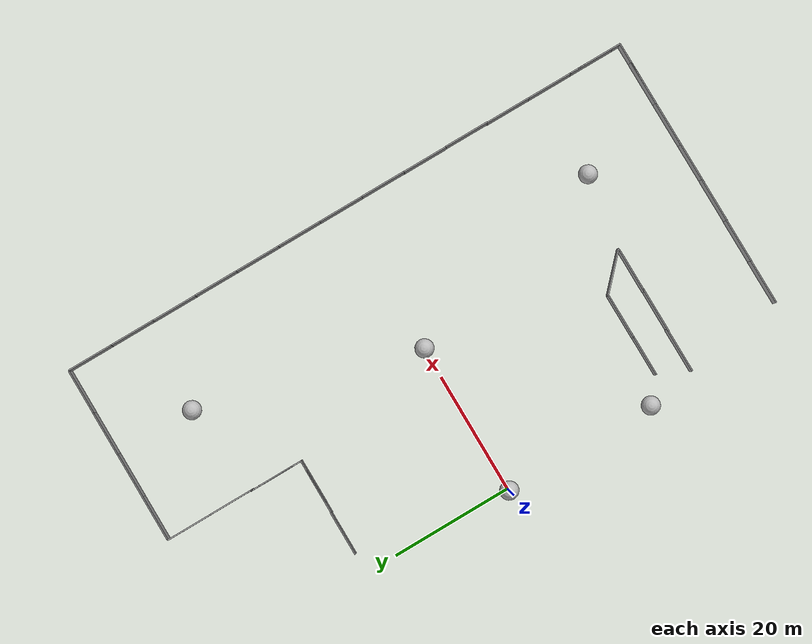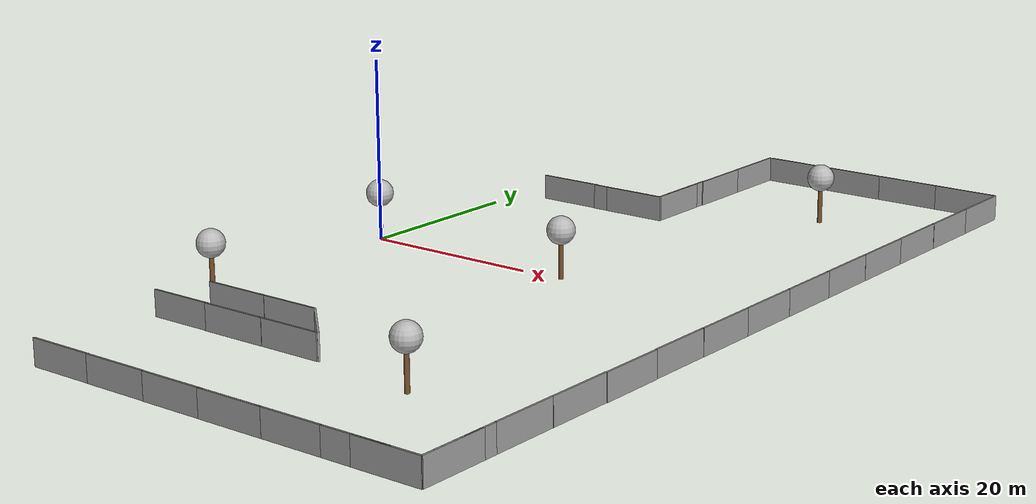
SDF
<sdf version="1.6">
 <world name="default">
  <model name="grey_wall_1">
   <static>1</static>
   <link name="link">
    <pose>0 0 1.4 0 -0 0</pose>
    <collision name="collision"><geometry><box><size>7.5 0.2 2.8</size></box></geometry></collision>
    <visual name="visual">
     <cast_shadows>0</cast_shadows>
     <geometry><box><size>7.5 0.2 2.8</size></box></geometry>
     <material>
      <script>
       <uri>model://grey_wall/materials/scripts</uri>
       <uri>model://grey_wall/materials/textures</uri>
       <name>vrc/grey_wall</name>
      </script>
     </material>
    </visual>
   </link>
   <pose>50 0 0 0 -0 1.57</pose>
  </model>
  <model name="grey_wall_1_clone_clone_11">
   <static>1</static>
   <link name="link">
    <pose>0 0 1.4 0 -0 0</pose>
    <collision name="collision"><geometry><box><size>7.5 0.2 2.8</size></box></geometry></collision>
    <visual name="visual">
     <cast_shadows>0</cast_shadows>
     <geometry><box><size>7.5 0.2 2.8</size></box></geometry>
     <material>
      <script>
       <uri>model://grey_wall/materials/scripts</uri>
       <uri>model://grey_wall/materials/textures</uri>
       <name>vrc/grey_wall</name>
      </script>
     </material>
    </visual>
   </link>
   <pose>50.0103 -7.49568 0 0 -0 1.57</pose>
  </model>
  <model name="grey_wall_1_clone_clone_12">
   <static>1</static>
   <link name="link">
    <pose>0 0 1.4 0 -0 0</pose>
    <collision name="collision"><geometry><box><size>7.5 0.2 2.8</size></box></geometry></collision>
    <visual name="visual">
     <cast_shadows>0</cast_shadows>
     <geometry><box><size>7.5 0.2 2.8</size></box></geometry>
     <material>
      <script>
       <uri>model://grey_wall/materials/scripts</uri>
       <uri>model://grey_wall/materials/textures</uri>
       <name>vrc/grey_wall</name>
      </script>
     </material>
    </visual>
   </link>
   <pose>49.9783 -15.0116 0 0 -0 1.57</pose>
  </model>
  <model name="grey_wall_1_clone_clone_13">
   <static>1</static>
   <link name="link">
    <pose>0 0 1.4 0 -0 0</pose>
    <collision name="collision"><geometry><box><size>7.5 0.2 2.8</size></box></geometry></collision>
    <visual name="visual">
     <cast_shadows>0</cast_shadows>
     <geometry><box><size>7.5 0.2 2.8</size></box></geometry>
     <material>
      <script>
       <uri>model://grey_wall/materials/scripts</uri>
       <uri>model://grey_wall/materials/textures</uri>
       <name>vrc/grey_wall</name>
      </script>
     </material>
    </visual>
   </link>
   <pose>50.0236 -22.4733 0 0 -0 1.57</pose>
  </model>
  <model name="grey_wall_1_clone_clone_14">
   <static>1</static>
   <link name="link">
    <pose>0 0 1.4 0 -0 0</pose>
    <collision name="collision"><geometry><box><size>7.5 0.2 2.8</size></box></geometry></collision>
    <visual name="visual">
     <cast_shadows>0</cast_shadows>
     <geometry><box><size>7.5 0.2 2.8</size></box></geometry>
     <material>
      <script>
       <uri>model://grey_wall/materials/scripts</uri>
       <uri>model://grey_wall/materials/textures</uri>
       <name>vrc/grey_wall</name>
      </script>
     </material>
    </visual>
   </link>
   <pose>49.9472 -29.9173 0 0 -0 1.57</pose>
  </model>
  <model name="grey_wall_1_clone_clone_15">
   <static>1</static>
   <link name="link">
    <pose>0 0 1.4 0 -0 0</pose>
    <collision name="collision"><geometry><box><size>7.5 0.2 2.8</size></box></geometry></collision>
    <visual name="visual">
     <cast_shadows>0</cast_shadows>
     <geometry><box><size>7.5 0.2 2.8</size></box></geometry>
     <material>
      <script>
       <uri>model://grey_wall/materials/scripts</uri>
       <uri>model://grey_wall/materials/textures</uri>
       <name>vrc/grey_wall</name>
      </script>
     </material>
    </visual>
   </link>
   <pose>49.9295 -37.3932 0 0 -0 1.57</pose>
  </model>
  <model name="grey_wall_1_clone_clone_16">
   <static>1</static>
   <link name="link">
    <pose>0 0 1.4 0 -0 0</pose>
    <collision name="collision"><geometry><box><size>7.5 0.2 2.8</size></box></geometry></collision>
    <visual name="visual">
     <cast_shadows>0</cast_shadows>
     <geometry><box><size>7.5 0.2 2.8</size></box></geometry>
     <material>
      <script>
       <uri>model://grey_wall/materials/scripts</uri>
       <uri>model://grey_wall/materials/textures</uri>
       <name>vrc/grey_wall</name>
      </script>
     </material>
    </visual>
   </link>
   <pose>49.9377 -44.8561 0 0 -0 1.57</pose>
  </model>
  <model name="grey_wall_1_clone_clone_17">
   <static>1</static>
   <link name="link">
    <pose>0 0 1.4 0 -0 0</pose>
    <collision name="collision"><geometry><box><size>7.5 0.2 2.8</size></box></geometry></collision>
    <visual name="visual">
     <cast_shadows>0</cast_shadows>
     <geometry><box><size>7.5 0.2 2.8</size></box></geometry>
     <material>
      <script>
       <uri>model://grey_wall/materials/scripts</uri>
       <uri>model://grey_wall/materials/textures</uri>
       <name>vrc/grey_wall</name>
      </script>
     </material>
    </visual>
   </link>
   <pose>50.0095 7.49254 0 0 -0 1.57</pose>
  </model>
  <model name="grey_wall_1_clone_clone_18">
   <static>1</static>
   <link name="link">
    <pose>0 0 1.4 0 -0 0</pose>
    <collision name="collision"><geometry><box><size>7.5 0.2 2.8</size></box></geometry></collision>
    <visual name="visual">
     <cast_shadows>0</cast_shadows>
     <geometry><box><size>7.5 0.2 2.8</size></box></geometry>
     <material>
      <script>
       <uri>model://grey_wall/materials/scripts</uri>
       <uri>model://grey_wall/materials/textures</uri>
       <name>vrc/grey_wall</name>
      </script>
     </material>
    </visual>
   </link>
   <pose>50.0062 14.9242 0 0 -0 1.57</pose>
  </model>
  <model name="grey_wall_1_clone_clone_19">
   <static>1</static>
   <link name="link">
    <pose>0 0 1.4 0 -0 0</pose>
    <collision name="collision"><geometry><box><size>7.5 0.2 2.8</size></box></geometry></collision>
    <visual name="visual">
     <cast_shadows>0</cast_shadows>
     <geometry><box><size>7.5 0.2 2.8</size></box></geometry>
     <material>
      <script>
       <uri>model://grey_wall/materials/scripts</uri>
       <uri>model://grey_wall/materials/textures</uri>
       <name>vrc/grey_wall</name>
      </script>
     </material>
    </visual>
   </link>
   <pose>50.0246 22.3183 0 0 -0 1.57</pose>
  </model>
  <model name="grey_wall_1_clone_clone_20">
   <static>1</static>
   <link name="link">
    <pose>0 0 1.4 0 -0 0</pose>
    <collision name="collision"><geometry><box><size>7.5 0.2 2.8</size></box></geometry></collision>
    <visual name="visual">
     <cast_shadows>0</cast_shadows>
     <geometry><box><size>7.5 0.2 2.8</size></box></geometry>
     <material>
      <script>
       <uri>model://grey_wall/materials/scripts</uri>
       <uri>model://grey_wall/materials/textures</uri>
       <name>vrc/grey_wall</name>
      </script>
     </material>
    </visual>
   </link>
   <pose>50.0134 29.75 0 0 -0 1.57</pose>
  </model>
  <model name="grey_wall_1_clone_clone_21">
   <static>1</static>
   <link name="link">
    <pose>0 0 1.4 0 -0 0</pose>
    <collision name="collision"><geometry><box><size>7.5 0.2 2.8</size></box></geometry></collision>
    <visual name="visual">
     <cast_shadows>0</cast_shadows>
     <geometry><box><size>7.5 0.2 2.8</size></box></geometry>
     <material>
      <script>
       <uri>model://grey_wall/materials/scripts</uri>
       <uri>model://grey_wall/materials/textures</uri>
       <name>vrc/grey_wall</name>
      </script>
     </material>
    </visual>
   </link>
   <pose>50.0432 37.227 0 0 -0 1.57</pose>
  </model>
  <model name="grey_wall_1_clone_clone_22">
   <static>1</static>
   <link name="link">
    <pose>0 0 1.4 0 -0 0</pose>
    <collision name="collision"><geometry><box><size>7.5 0.2 2.8</size></box></geometry></collision>
    <visual name="visual">
     <cast_shadows>0</cast_shadows>
     <geometry><box><size>7.5 0.2 2.8</size></box></geometry>
     <material>
      <script>
       <uri>model://grey_wall/materials/scripts</uri>
       <uri>model://grey_wall/materials/textures</uri>
       <name>vrc/grey_wall</name>
      </script>
     </material>
    </visual>
   </link>
   <pose>50.0462 44.6648 0 0 -0 1.57</pose>
  </model>
  <model name="grey_wall_0_clone">
   <static>1</static>
   <link name="link">
    <pose>0 0 1.4 0 -0 0</pose>
    <collision name="collision"><geometry><box><size>7.5 0.2 2.8</size></box></geometry></collision>
    <visual name="visual">
     <cast_shadows>0</cast_shadows>
     <geometry><box><size>7.5 0.2 2.8</size></box></geometry>
     <material>
      <script>
       <uri>model://grey_wall/materials/scripts</uri>
       <uri>model://grey_wall/materials/textures</uri>
       <name>vrc/grey_wall</name>
      </script>
     </material>
    </visual>
   </link>
   <pose>7.24673 25.0713 0 0 -0 0</pose>
  </model>
  <model name="grey_wall_0_clone_0">
   <static>1</static>
   <link name="link">
    <pose>0 0 1.4 0 -0 0</pose>
    <collision name="collision"><geometry><box><size>7.5 0.2 2.8</size></box></geometry></collision>
    <visual name="visual">
     <cast_shadows>0</cast_shadows>
     <geometry><box><size>7.5 0.2 2.8</size></box></geometry>
     <material>
      <script>
       <uri>model://grey_wall/materials/scripts</uri>
       <uri>model://grey_wall/materials/textures</uri>
       <name>vrc/grey_wall</name>
      </script>
     </material>
    </visual>
   </link>
   <pose>14.524 24.9801 0 0 -0 0</pose>
  </model>
  <model name="grey_wall_0_clone_3">
   <static>1</static>
   <link name="link">
    <pose>0 0 1.4 0 -0 0</pose>
    <collision name="collision"><geometry><box><size>7.5 0.2 2.8</size></box></geometry></collision>
    <visual name="visual">
     <cast_shadows>0</cast_shadows>
     <geometry><box><size>7.5 0.2 2.8</size></box></geometry>
     <material>
      <script>
       <uri>model://grey_wall/materials/scripts</uri>
       <uri>model://grey_wall/materials/textures</uri>
       <name>vrc/grey_wall</name>
      </script>
     </material>
    </visual>
   </link>
   <pose>46.2788 48.4572 0 0 -0 0</pose>
  </model>
  <model name="grey_wall_0_clone_4">
   <static>1</static>
   <link name="link">
    <pose>0 0 1.4 0 -0 0</pose>
    <collision name="collision"><geometry><box><size>7.5 0.2 2.8</size></box></geometry></collision>
    <visual name="visual">
     <cast_shadows>0</cast_shadows>
     <geometry><box><size>7.5 0.2 2.8</size></box></geometry>
     <material>
      <script>
       <uri>model://grey_wall/materials/scripts</uri>
       <uri>model://grey_wall/materials/textures</uri>
       <name>vrc/grey_wall</name>
      </script>
     </material>
    </visual>
   </link>
   <pose>38.8606 48.4742 0 0 -0 0</pose>
  </model>
  <model name="grey_wall_0_clone_5">
   <static>1</static>
   <link name="link">
    <pose>0 0 1.4 0 -0 0</pose>
    <collision name="collision"><geometry><box><size>7.5 0.2 2.8</size></box></geometry></collision>
    <visual name="visual">
     <cast_shadows>0</cast_shadows>
     <geometry><box><size>7.5 0.2 2.8</size></box></geometry>
     <material>
      <script>
       <uri>model://grey_wall/materials/scripts</uri>
       <uri>model://grey_wall/materials/textures</uri>
       <name>vrc/grey_wall</name>
      </script>
     </material>
    </visual>
   </link>
   <pose>31.4054 48.4637 0 0 -0 0</pose>
  </model>
  <model name="grey_wall_0_clone_6">
   <static>1</static>
   <link name="link">
    <pose>0 0 1.4 0 -0 0</pose>
    <collision name="collision"><geometry><box><size>7.5 0.2 2.8</size></box></geometry></collision>
    <visual name="visual">
     <cast_shadows>0</cast_shadows>
     <geometry><box><size>7.5 0.2 2.8</size></box></geometry>
     <material>
      <script>
       <uri>model://grey_wall/materials/scripts</uri>
       <uri>model://grey_wall/materials/textures</uri>
       <name>vrc/grey_wall</name>
      </script>
     </material>
    </visual>
   </link>
   <pose>23.9127 48.4733 0 0 -0 0</pose>
  </model>
  <model name="grey_wall_1_clone_clone_22_clone">
   <static>1</static>
   <link name="link">
    <pose>0 0 1.4 0 -0 0</pose>
    <collision name="collision"><geometry><box><size>7.5 0.2 2.8</size></box></geometry></collision>
    <visual name="visual">
     <cast_shadows>0</cast_shadows>
     <geometry><box><size>7.5 0.2 2.8</size></box></geometry>
     <material>
      <script>
       <uri>model://grey_wall/materials/scripts</uri>
       <uri>model://grey_wall/materials/textures</uri>
       <name>vrc/grey_wall</name>
      </script>
     </material>
    </visual>
   </link>
   <pose>20.0153 44.7619 0 0 -0 1.57</pose>
  </model>
  <model name="grey_wall_1_clone_clone_22_clone_0">
   <static>1</static>
   <link name="link">
    <pose>0 0 1.4 0 -0 0</pose>
    <collision name="collision"><geometry><box><size>7.5 0.2 2.8</size></box></geometry></collision>
    <visual name="visual">
     <cast_shadows>0</cast_shadows>
     <geometry><box><size>7.5 0.2 2.8</size></box></geometry>
     <material>
      <script>
       <uri>model://grey_wall/materials/scripts</uri>
       <uri>model://grey_wall/materials/textures</uri>
       <name>vrc/grey_wall</name>
      </script>
     </material>
    </visual>
   </link>
   <pose>20.0236 37.279 0 0 -0 1.57</pose>
  </model>
  <model name="grey_wall_1_clone_clone_22_clone_1">
   <static>1</static>
   <link name="link">
    <pose>0 0 1.4 0 -0 0</pose>
    <collision name="collision"><geometry><box><size>7.5 0.2 2.8</size></box></geometry></collision>
    <visual name="visual">
     <cast_shadows>0</cast_shadows>
     <geometry><box><size>7.5 0.2 2.8</size></box></geometry>
     <material>
      <script>
       <uri>model://grey_wall/materials/scripts</uri>
       <uri>model://grey_wall/materials/textures</uri>
       <name>vrc/grey_wall</name>
      </script>
     </material>
    </visual>
   </link>
   <pose>19.9294 30.0842 0 0 -0 1.57</pose>
  </model>
  <model name="grey_wall_1_clone_clone_22_clone_2">
   <static>1</static>
   <link name="link">
    <pose>0 0 1.4 0 -0 0</pose>
    <collision name="collision"><geometry><box><size>7.5 0.2 2.8</size></box></geometry></collision>
    <visual name="visual">
     <cast_shadows>0</cast_shadows>
     <geometry><box><size>7.5 0.2 2.8</size></box></geometry>
     <material>
      <script>
       <uri>model://grey_wall/materials/scripts</uri>
       <uri>model://grey_wall/materials/textures</uri>
       <name>vrc/grey_wall</name>
      </script>
     </material>
    </visual>
   </link>
   <pose>19.9494 28.6505 0 0 -0 1.57</pose>
  </model>
  <model name="grey_wall_0_clone_0_clone">
   <static>1</static>
   <link name="link">
    <pose>0 0 1.4 0 -0 0</pose>
    <collision name="collision"><geometry><box><size>7.5 0.2 2.8</size></box></geometry></collision>
    <visual name="visual">
     <cast_shadows>0</cast_shadows>
     <geometry><box><size>7.5 0.2 2.8</size></box></geometry>
     <material>
      <script>
       <uri>model://grey_wall/materials/scripts</uri>
       <uri>model://grey_wall/materials/textures</uri>
       <name>vrc/grey_wall</name>
      </script>
     </material>
    </visual>
   </link>
   <pose>16.3024 24.9572 0 0 -0 0</pose>
  </model>
  <model name="grey_wall_clone_2">
   <static>1</static>
   <link name="link">
    <pose>0 0 1.4 0 -0 0</pose>
    <collision name="collision"><geometry><box><size>7.5 0.2 2.8</size></box></geometry></collision>
    <visual name="visual">
     <cast_shadows>0</cast_shadows>
     <geometry><box><size>7.5 0.2 2.8</size></box></geometry>
     <material>
      <script>
       <uri>model://grey_wall/materials/scripts</uri>
       <uri>model://grey_wall/materials/textures</uri>
       <name>vrc/grey_wall</name>
      </script>
     </material>
    </visual>
   </link>
   <pose>7.1808 -49.9292 0 0 -0 0</pose>
  </model>
  <model name="grey_wall_clone_3">
   <static>1</static>
   <link name="link">
    <pose>0 0 1.4 0 -0 0</pose>
    <collision name="collision"><geometry><box><size>7.5 0.2 2.8</size></box></geometry></collision>
    <visual name="visual">
     <cast_shadows>0</cast_shadows>
     <geometry><box><size>7.5 0.2 2.8</size></box></geometry>
     <material>
      <script>
       <uri>model://grey_wall/materials/scripts</uri>
       <uri>model://grey_wall/materials/textures</uri>
       <name>vrc/grey_wall</name>
      </script>
     </material>
    </visual>
   </link>
   <pose>14.4331 -49.9629 0 0 -0 0</pose>
  </model>
  <model name="grey_wall_clone_4">
   <static>1</static>
   <link name="link">
    <pose>0 0 1.4 0 -0 0</pose>
    <collision name="collision"><geometry><box><size>7.5 0.2 2.8</size></box></geometry></collision>
    <visual name="visual">
     <cast_shadows>0</cast_shadows>
     <geometry><box><size>7.5 0.2 2.8</size></box></geometry>
     <material>
      <script>
       <uri>model://grey_wall/materials/scripts</uri>
       <uri>model://grey_wall/materials/textures</uri>
       <name>vrc/grey_wall</name>
      </script>
     </material>
    </visual>
   </link>
   <pose>21.7703 -50.0048 0 0 -0 0</pose>
  </model>
  <model name="grey_wall_clone_5">
   <static>1</static>
   <link name="link">
    <pose>0 0 1.4 0 -0 0</pose>
    <collision name="collision"><geometry><box><size>7.5 0.2 2.8</size></box></geometry></collision>
    <visual name="visual">
     <cast_shadows>0</cast_shadows>
     <geometry><box><size>7.5 0.2 2.8</size></box></geometry>
     <material>
      <script>
       <uri>model://grey_wall/materials/scripts</uri>
       <uri>model://grey_wall/materials/textures</uri>
       <name>vrc/grey_wall</name>
      </script>
     </material>
    </visual>
   </link>
   <pose>28.6548 -50.0241 0 0 -0 0</pose>
  </model>
  <model name="grey_wall_clone_6">
   <static>1</static>
   <link name="link">
    <pose>0 0 1.4 0 -0 0</pose>
    <collision name="collision"><geometry><box><size>7.5 0.2 2.8</size></box></geometry></collision>
    <visual name="visual">
     <cast_shadows>0</cast_shadows>
     <geometry><box><size>7.5 0.2 2.8</size></box></geometry>
     <material>
      <script>
       <uri>model://grey_wall/materials/scripts</uri>
       <uri>model://grey_wall/materials/textures</uri>
       <name>vrc/grey_wall</name>
      </script>
     </material>
    </visual>
   </link>
   <pose>35.5368 -50.0214 0 0 -0 0</pose>
  </model>
  <model name="grey_wall_clone_7">
   <static>1</static>
   <link name="link">
    <pose>0 0 1.4 0 -0 0</pose>
    <collision name="collision"><geometry><box><size>7.5 0.2 2.8</size></box></geometry></collision>
    <visual name="visual">
     <cast_shadows>0</cast_shadows>
     <geometry><box><size>7.5 0.2 2.8</size></box></geometry>
     <material>
      <script>
       <uri>model://grey_wall/materials/scripts</uri>
       <uri>model://grey_wall/materials/textures</uri>
       <name>vrc/grey_wall</name>
      </script>
     </material>
    </visual>
   </link>
   <pose>42.9255 -50.0297 0 0 -0 0</pose>
  </model>
  <model name="grey_wall_clone_8">
   <static>1</static>
   <link name="link">
    <pose>0 0 1.4 0 -0 0</pose>
    <collision name="collision"><geometry><box><size>7.5 0.2 2.8</size></box></geometry></collision>
    <visual name="visual">
     <cast_shadows>0</cast_shadows>
     <geometry><box><size>7.5 0.2 2.8</size></box></geometry>
     <material>
      <script>
       <uri>model://grey_wall/materials/scripts</uri>
       <uri>model://grey_wall/materials/textures</uri>
       <name>vrc/grey_wall</name>
      </script>
     </material>
    </visual>
   </link>
   <pose>46.1973 -50.0456 0 0 -0 0</pose>
  </model>
  <model name="grey_wall_1_clone_clone_16_clone">
   <static>1</static>
   <link name="link">
    <pose>0 0 1.4 0 -0 0</pose>
    <collision name="collision"><geometry><box><size>7.5 0.2 2.8</size></box></geometry></collision>
    <visual name="visual">
     <cast_shadows>0</cast_shadows>
     <geometry><box><size>7.5 0.2 2.8</size></box></geometry>
     <material>
      <script>
       <uri>model://grey_wall/materials/scripts</uri>
       <uri>model://grey_wall/materials/textures</uri>
       <name>vrc/grey_wall</name>
      </script>
     </material>
    </visual>
   </link>
   <pose>49.9421 -46.3106 0 0 -0 1.57</pose>
  </model>
  <model name="grey_wall_1_clone_clone_1_clone_clone_3_clone_1">
   <static>1</static>
   <link name="link">
    <pose>0 0 1.4 0 -0 0</pose>
    <collision name="collision"><geometry><box><size>7.5 0.2 2.8</size></box></geometry></collision>
    <visual name="visual">
     <cast_shadows>0</cast_shadows>
     <geometry><box><size>7.5 0.2 2.8</size></box></geometry>
     <material>
      <script>
       <uri>model://grey_wall/materials/scripts</uri>
       <uri>model://grey_wall/materials/textures</uri>
       <name>vrc/grey_wall</name>
      </script>
     </material>
    </visual>
   </link>
   <pose>20.231 -30.9103 0 0 0 -0.76</pose>
  </model>
  <model name="tree_simple_1">
   <static>1</static>
   <link name="link">
    <pose>0 0 0.1 0 -0 0</pose>
    <inertial>
     <mass>666</mass>
     <inertia>
      <ixx>0.0861167</ixx>
      <ixy>0</ixy>
      <ixz>0</ixz>
      <iyy>0.0861167</iyy>
      <iyz>0</iyz>
      <izz>0.0861167</izz>
     </inertia>
    </inertial>
    <collision name="collision_trunk">
     <pose>0 0 2 0 -0 0</pose>
     <geometry><cylinder><radius>0.25</radius><length>4</length></cylinder></geometry>
     <surface>
      <contact>
       <poissons_ratio>0.347</poissons_ratio>
       <elastic_modulus>8.8e+09</elastic_modulus>
       <ode><kp>100000</kp><kd>100</kd><max_vel>100</max_vel><min_depth>0.001</min_depth></ode>
      </contact>
      <friction>
       <torsional>
        <coefficient>1</coefficient>
        <use_patch_radius>0</use_patch_radius>
        <surface_radius>0.01</surface_radius>
       </torsional>
      </friction>
     </surface>
    </collision>
    <collision name="collision_treetop">
     <pose>0 0 5.2 0 -0 0</pose>
     <geometry><sphere><radius>1.5</radius></sphere></geometry>
     <surface>
      <contact>
       <poissons_ratio>0.347</poissons_ratio>
       <elastic_modulus>8.8e+09</elastic_modulus>
       <ode><kp>100000</kp><kd>100</kd><max_vel>100</max_vel><min_depth>0.001</min_depth></ode>
      </contact>
      <friction>
       <torsional>
        <coefficient>1</coefficient>
        <use_patch_radius>0</use_patch_radius>
        <surface_radius>0.01</surface_radius>
       </torsional>
      </friction>
     </surface>
    </collision>
    <visual name="trunk">
     <pose>0 0 2 0 -0 0</pose>
     <geometry><cylinder><radius>0.25</radius><length>4</length></cylinder></geometry>
     <material>
      <script>
       <uri>model://tree_simple/scripts</uri>
       <uri>model://tree_simple/materials/textures</uri>
       <name>TreeSimple/Trunk</name>
      </script>
     </material>
    </visual>
    <visual name="treetop">
     <pose>0 0 5.2 0 -0 0</pose>
     <geometry><sphere><radius>1.5</radius></sphere></geometry>
     <material>
      <script>
       <uri>model://tree_simple/scripts</uri>
       <uri>model://tree_simple/materials/textures</uri>
       <name>TreeSimple/Treetop</name>
      </script>
     </material>
    </visual>
   </link>
  </model>
  <model name="tree_simple_2">
   <static>1</static>
   <link name="link">
    <pose>0 0 0.1 0 -0 0</pose>
    <inertial>
     <mass>666</mass>
     <inertia>
      <ixx>0.0861167</ixx>
      <ixy>0</ixy>
      <ixz>0</ixz>
      <iyy>0.0861167</iyy>
      <iyz>0</iyz>
      <izz>0.0861167</izz>
     </inertia>
    </inertial>
    <collision name="collision_trunk">
     <pose>0 0 2 0 -0 0</pose>
     <geometry><cylinder><radius>0.25</radius><length>4</length></cylinder></geometry>
     <surface>
      <contact>
       <poissons_ratio>0.347</poissons_ratio>
       <elastic_modulus>8.8e+09</elastic_modulus>
       <ode><kp>100000</kp><kd>100</kd><max_vel>100</max_vel><min_depth>0.001</min_depth></ode>
      </contact>
      <friction>
       <torsional>
        <coefficient>1</coefficient>
        <use_patch_radius>0</use_patch_radius>
        <surface_radius>0.01</surface_radius>
       </torsional>
      </friction>
     </surface>
    </collision>
    <collision name="collision_treetop">
     <pose>0 0 5.2 0 -0 0</pose>
     <geometry><sphere><radius>1.5</radius></sphere></geometry>
     <surface>
      <contact>
       <poissons_ratio>0.347</poissons_ratio>
       <elastic_modulus>8.8e+09</elastic_modulus>
       <ode><kp>100000</kp><kd>100</kd><max_vel>100</max_vel><min_depth>0.001</min_depth></ode>
      </contact>
      <friction>
       <torsional>
        <coefficient>1</coefficient>
        <use_patch_radius>0</use_patch_radius>
        <surface_radius>0.01</surface_radius>
       </torsional>
      </friction>
     </surface>
    </collision>
    <visual name="trunk">
     <pose>0 0 2 0 -0 0</pose>
     <geometry><cylinder><radius>0.25</radius><length>4</length></cylinder></geometry>
     <material>
      <script>
       <uri>model://tree_simple/scripts</uri>
       <uri>model://tree_simple/materials/textures</uri>
       <name>TreeSimple/Trunk</name>
      </script>
     </material>
    </visual>
    <visual name="treetop">
     <pose>0 0 5.2 0 -0 0</pose>
     <geometry><sphere><radius>1.5</radius></sphere></geometry>
     <material>
      <script>
       <uri>model://tree_simple/scripts</uri>
       <uri>model://tree_simple/materials/textures</uri>
       <name>TreeSimple/Treetop</name>
      </script>
     </material>
    </visual>
   </link>
   <pose>35 -35 0 0 -0 0</pose>
  </model>
  <model name="tree_simple_3">
   <static>1</static>
   <link name="link">
    <pose>0 0 0.1 0 -0 0</pose>
    <inertial>
     <mass>666</mass>
     <inertia>
      <ixx>0.0861167</ixx>
      <ixy>0</ixy>
      <ixz>0</ixz>
      <iyy>0.0861167</iyy>
      <iyz>0</iyz>
      <izz>0.0861167</izz>
     </inertia>
    </inertial>
    <collision name="collision_trunk">
     <pose>0 0 2 0 -0 0</pose>
     <geometry><cylinder><radius>0.25</radius><length>4</length></cylinder></geometry>
     <surface>
      <contact>
       <poissons_ratio>0.347</poissons_ratio>
       <elastic_modulus>8.8e+09</elastic_modulus>
       <ode><kp>100000</kp><kd>100</kd><max_vel>100</max_vel><min_depth>0.001</min_depth></ode>
      </contact>
      <friction>
       <torsional>
        <coefficient>1</coefficient>
        <use_patch_radius>0</use_patch_radius>
        <surface_radius>0.01</surface_radius>
       </torsional>
      </friction>
     </surface>
    </collision>
    <collision name="collision_treetop">
     <pose>0 0 5.2 0 -0 0</pose>
     <geometry><sphere><radius>1.5</radius></sphere></geometry>
     <surface>
      <contact>
       <poissons_ratio>0.347</poissons_ratio>
       <elastic_modulus>8.8e+09</elastic_modulus>
       <ode><kp>100000</kp><kd>100</kd><max_vel>100</max_vel><min_depth>0.001</min_depth></ode>
      </contact>
      <friction>
       <torsional>
        <coefficient>1</coefficient>
        <use_patch_radius>0</use_patch_radius>
        <surface_radius>0.01</surface_radius>
       </torsional>
      </friction>
     </surface>
    </collision>
    <visual name="trunk">
     <pose>0 0 2 0 -0 0</pose>
     <geometry><cylinder><radius>0.25</radius><length>4</length></cylinder></geometry>
     <material>
      <script>
       <uri>model://tree_simple/scripts</uri>
       <uri>model://tree_simple/materials/textures</uri>
       <name>TreeSimple/Trunk</name>
      </script>
     </material>
    </visual>
    <visual name="treetop">
     <pose>0 0 5.2 0 -0 0</pose>
     <geometry><sphere><radius>1.5</radius></sphere></geometry>
     <material>
      <script>
       <uri>model://tree_simple/scripts</uri>
       <uri>model://tree_simple/materials/textures</uri>
       <name>TreeSimple/Treetop</name>
      </script>
     </material>
    </visual>
   </link>
   <pose>25 0 0 0 -0 0</pose>
  </model>
  <model name="tree_simple_4">
   <static>1</static>
   <link name="link">
    <pose>0 0 0.1 0 -0 0</pose>
    <inertial>
     <mass>666</mass>
     <inertia>
      <ixx>0.0861167</ixx>
      <ixy>0</ixy>
      <ixz>0</ixz>
      <iyy>0.0861167</iyy>
      <iyz>0</iyz>
      <izz>0.0861167</izz>
     </inertia>
    </inertial>
    <collision name="collision_trunk">
     <pose>0 0 2 0 -0 0</pose>
     <geometry><cylinder><radius>0.25</radius><length>4</length></cylinder></geometry>
     <surface>
      <contact>
       <poissons_ratio>0.347</poissons_ratio>
       <elastic_modulus>8.8e+09</elastic_modulus>
       <ode><kp>100000</kp><kd>100</kd><max_vel>100</max_vel><min_depth>0.001</min_depth></ode>
      </contact>
      <friction>
       <torsional>
        <coefficient>1</coefficient>
        <use_patch_radius>0</use_patch_radius>
        <surface_radius>0.01</surface_radius>
       </torsional>
      </friction>
     </surface>
    </collision>
    <collision name="collision_treetop">
     <pose>0 0 5.2 0 -0 0</pose>
     <geometry><sphere><radius>1.5</radius></sphere></geometry>
     <surface>
      <contact>
       <poissons_ratio>0.347</poissons_ratio>
       <elastic_modulus>8.8e+09</elastic_modulus>
       <ode><kp>100000</kp><kd>100</kd><max_vel>100</max_vel><min_depth>0.001</min_depth></ode>
      </contact>
      <friction>
       <torsional>
        <coefficient>1</coefficient>
        <use_patch_radius>0</use_patch_radius>
        <surface_radius>0.01</surface_radius>
       </torsional>
      </friction>
     </surface>
    </collision>
    <visual name="trunk">
     <pose>0 0 2 0 -0 0</pose>
     <geometry><cylinder><radius>0.25</radius><length>4</length></cylinder></geometry>
     <material>
      <script>
       <uri>model://tree_simple/scripts</uri>
       <uri>model://tree_simple/materials/textures</uri>
       <name>TreeSimple/Trunk</name>
      </script>
     </material>
    </visual>
    <visual name="treetop">
     <pose>0 0 5.2 0 -0 0</pose>
     <geometry><sphere><radius>1.5</radius></sphere></geometry>
     <material>
      <script>
       <uri>model://tree_simple/scripts</uri>
       <uri>model://tree_simple/materials/textures</uri>
       <name>TreeSimple/Treetop</name>
      </script>
     </material>
    </visual>
   </link>
   <pose>35 35 0 0 -0 0</pose>
  </model>
  <model name="tree_simple_5">
   <static>1</static>
   <link name="link">
    <pose>0 0 0.1 0 -0 0</pose>
    <inertial>
     <mass>666</mass>
     <inertia>
      <ixx>0.0861167</ixx>
      <ixy>0</ixy>
      <ixz>0</ixz>
      <iyy>0.0861167</iyy>
      <iyz>0</iyz>
      <izz>0.0861167</izz>
     </inertia>
    </inertial>
    <collision name="collision_trunk">
     <pose>0 0 2 0 -0 0</pose>
     <geometry><cylinder><radius>0.25</radius><length>4</length></cylinder></geometry>
     <surface>
      <contact>
       <poissons_ratio>0.347</poissons_ratio>
       <elastic_modulus>8.8e+09</elastic_modulus>
       <ode><kp>100000</kp><kd>100</kd><max_vel>100</max_vel><min_depth>0.001</min_depth></ode>
      </contact>
      <friction>
       <torsional>
        <coefficient>1</coefficient>
        <use_patch_radius>0</use_patch_radius>
        <surface_radius>0.01</surface_radius>
       </torsional>
      </friction>
     </surface>
    </collision>
    <collision name="collision_treetop">
     <pose>0 0 5.2 0 -0 0</pose>
     <geometry><sphere><radius>1.5</radius></sphere></geometry>
     <surface>
      <contact>
       <poissons_ratio>0.347</poissons_ratio>
       <elastic_modulus>8.8e+09</elastic_modulus>
       <ode><kp>100000</kp><kd>100</kd><max_vel>100</max_vel><min_depth>0.001</min_depth></ode>
      </contact>
      <friction>
       <torsional>
        <coefficient>1</coefficient>
        <use_patch_radius>0</use_patch_radius>
        <surface_radius>0.01</surface_radius>
       </torsional>
      </friction>
     </surface>
    </collision>
    <visual name="trunk">
     <pose>0 0 2 0 -0 0</pose>
     <geometry><cylinder><radius>0.25</radius><length>4</length></cylinder></geometry>
     <material>
      <script>
       <uri>model://tree_simple/scripts</uri>
       <uri>model://tree_simple/materials/textures</uri>
       <name>TreeSimple/Trunk</name>
      </script>
     </material>
    </visual>
    <visual name="treetop">
     <pose>0 0 5.2 0 -0 0</pose>
     <geometry><sphere><radius>1.5</radius></sphere></geometry>
     <material>
      <script>
       <uri>model://tree_simple/scripts</uri>
       <uri>model://tree_simple/materials/textures</uri>
       <name>TreeSimple/Treetop</name>
      </script>
     </material>
    </visual>
   </link>
   <pose>0 -25 0 0 -0 0</pose>
  </model>
  <model name="grey_wall_clone_1_clone_3_clone_clone_0">
   <static>1</static>
   <link name="link">
    <pose>0 0 1.4 0 -0 0</pose>
    <collision name="collision"><geometry><box><size>7.5 0.2 2.8</size></box></geometry></collision>
    <visual name="visual">
     <cast_shadows>0</cast_shadows>
     <geometry><box><size>7.5 0.2 2.8</size></box></geometry>
     <material>
      <script>
       <uri>model://grey_wall/materials/scripts</uri>
       <uri>model://grey_wall/materials/textures</uri>
       <name>vrc/grey_wall</name>
      </script>
     </material>
    </visual>
   </link>
   <pose>7.14322 -28.4398 0 0 -0 0</pose>
  </model>
  <model name="grey_wall_clone_1_clone_3_clone_clone_2">
   <static>1</static>
   <link name="link">
    <pose>0 0 1.4 0 -0 0</pose>
    <collision name="collision"><geometry><box><size>7.5 0.2 2.8</size></box></geometry></collision>
    <visual name="visual">
     <cast_shadows>0</cast_shadows>
     <geometry><box><size>7.5 0.2 2.8</size></box></geometry>
     <material>
      <script>
       <uri>model://grey_wall/materials/scripts</uri>
       <uri>model://grey_wall/materials/textures</uri>
       <name>vrc/grey_wall</name>
      </script>
     </material>
    </visual>
   </link>
   <pose>4.79959 -33.4477 0 0 -0 0</pose>
  </model>
  <model name="grey_wall_clone_1_clone_3_clone_clone_3">
   <static>1</static>
   <link name="link">
    <pose>0 0 1.4 0 -0 0</pose>
    <collision name="collision"><geometry><box><size>7.5 0.2 2.8</size></box></geometry></collision>
    <visual name="visual">
     <cast_shadows>0</cast_shadows>
     <geometry><box><size>7.5 0.2 2.8</size></box></geometry>
     <material>
      <script>
       <uri>model://grey_wall/materials/scripts</uri>
       <uri>model://grey_wall/materials/textures</uri>
       <name>vrc/grey_wall</name>
      </script>
     </material>
    </visual>
   </link>
   <pose>11.8884 -33.5075 0 0 -0 0</pose>
  </model>
  <model name="grey_wall_clone_1_clone_3_clone_clone_4">
   <static>1</static>
   <link name="link">
    <pose>0 0 1.4 0 -0 0</pose>
    <collision name="collision"><geometry><box><size>7.5 0.2 2.8</size></box></geometry></collision>
    <visual name="visual">
     <cast_shadows>0</cast_shadows>
     <geometry><box><size>7.5 0.2 2.8</size></box></geometry>
     <material>
      <script>
       <uri>model://grey_wall/materials/scripts</uri>
       <uri>model://grey_wall/materials/textures</uri>
       <name>vrc/grey_wall</name>
      </script>
     </material>
    </visual>
   </link>
   <pose>18.9791 -33.4782 0 0 -0 0</pose>
  </model>
  <model name="grey_wall_clone_1_clone_3_clone_clone_0_clone">
   <static>1</static>
   <link name="link">
    <pose>0 0 1.4 0 -0 0</pose>
    <collision name="collision"><geometry><box><size>7.5 0.2 2.8</size></box></geometry></collision>
    <visual name="visual">
     <cast_shadows>0</cast_shadows>
     <geometry><box><size>7.5 0.2 2.8</size></box></geometry>
     <material>
      <script>
       <uri>model://grey_wall/materials/scripts</uri>
       <uri>model://grey_wall/materials/textures</uri>
       <name>vrc/grey_wall</name>
      </script>
     </material>
    </visual>
   </link>
   <pose>13.8462 -28.4197 0 0 -0 0</pose>
  </model>
 </world>
</sdf>
